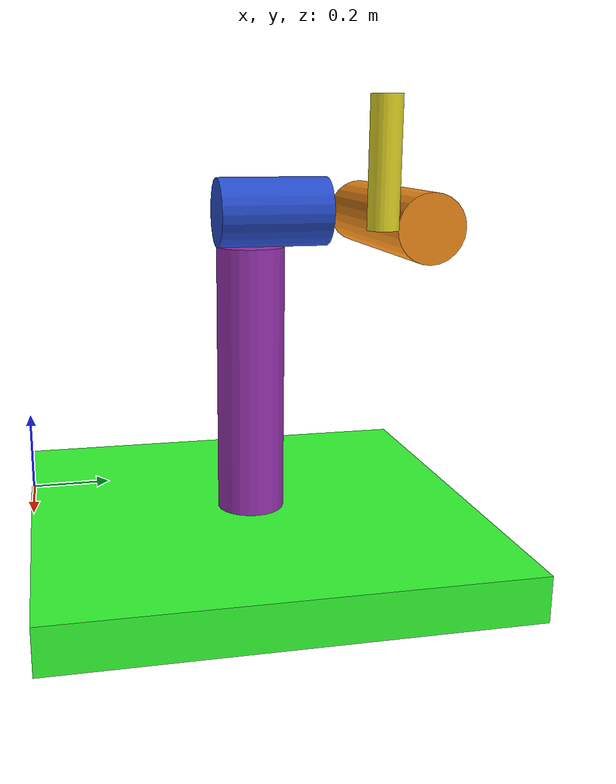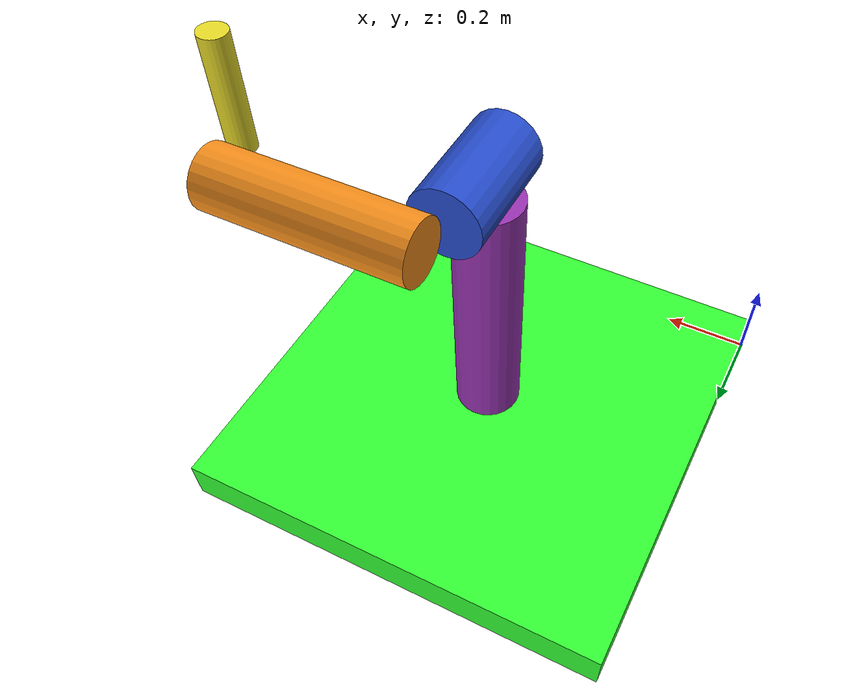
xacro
<?xml version="1.0"?>
<robot xmlns:xacro="http://www.ros.org/wiki/xacro" name="robot">

    <xacro:include filename="inertial_macros.xacro" />

    <!-- This first link called "world" is empty -->
    <link name="world"></link>

    <joint name="base_joint" type="fixed">
        <origin xyz="0.5 0.5 0" rpy="0 0 0"/>
        <parent link="world"/>
        <child link="base_link"/>
    </joint>

    <link name="base_link">
        <visual>
            <origin xyz="0 0 0.05" rpy="0 0 0"/>
            <geometry>
                <box size="1 1 0.1" />
            </geometry>
            <material name="green">
                <color rgba="0.2 1 0.2 1"/>
            </material>
        </visual>
        <collision>
            <origin xyz="0 0 0.05" rpy="0 0 0"/>
            <geometry>
                <box size="1 1 0.1" />
            </geometry>
        </collision>
        <inertial>
            <origin xyz="0 0 0.05" rpy="0 0 0"/>
            <mass value="12" />
            <inertia ixx="2.26" ixy="0.0" ixz="0.0" iyy="6.26" iyz="0.0" izz="8.5" />
        </inertial>
    </link>

    <joint name="joint_1_shoulder" type="fixed">
        <origin xyz="0 0 0.1" rpy="0 0 0"/>
        <parent link="base_link"/>
        <child link="link_1"/>
    </joint>

    <xacro:property name="link_1_length" value="0.59817" />
    <xacro:property name="link_1_radius" value="0.07493" />

    <link name="link_1">
        <visual>
            <origin xyz="0 0 ${link_1_length/2}" rpy="0 0 0"/>
            <geometry>
                <cylinder length="${link_1_length}" radius="${link_1_radius}" />
            </geometry>
            <material name="purple" />
        </visual>
        <collision>
            <origin xyz="0 0 ${link_1_length/2}" rpy="0 0 0"/>
            <geometry>
                <cylinder length="${link_1_length}" radius="${link_1_radius}" />
            </geometry>
        </collision>
        <xacro:inertial_cylinder mass="0.5" length="${link_1_length}" radius="${link_1_radius}">
            <origin xyz="0 0 ${link_1_length/2}" rpy="0 0 0"/>
        </xacro:inertial_cylinder>
    </link>

    <!-- Add properties for shoulder -->
    <xacro:property name="shoulder_length" value="${0.1686 + link_1_radius}" />
    <xacro:property name="shoulder_radius" value="${link_1_radius}" />

    <joint name="joint_1" type="revolute">
        <origin xyz="0 0 0.671" rpy="0 0 0"/>
        <parent link="link_1"/>
        <child link="shoulder"/>
        <axis xyz="0 0 1"/>
        <limit lower="${-10*pi}" upper="${10*pi}" velocity="2" effort="1000"/>
        <dynamics damping="0" friction="0"/>
    </joint>

    <!-- MATLAB Link 1 = shoulder (m1=0, only Izz=1.49) -->
    <link name="shoulder">
        <visual>
            <origin xyz="0 ${shoulder_length/2 - shoulder_radius} 0" rpy="${pi/2} 0 0"/>
            <geometry>
                <cylinder length="${shoulder_length}" radius="${shoulder_radius}" />
            </geometry>
            <material name="blue" />
        </visual>
        <collision>
            <origin xyz="0 ${shoulder_length/2 - shoulder_radius} 0" rpy="${pi/2} 0 0"/>
            <geometry>
                <cylinder length="${shoulder_length}" radius="${shoulder_radius}" />
            </geometry>
        </collision>
        <xacro:inertial_link1>
            <origin xyz="0 0 0" rpy="0 0 0"/>
        </xacro:inertial_link1>
    </link>

    <xacro:property name="link_2_length" value="0.432" />
    <xacro:property name="link_2_radius" value="0.065278" />

    <joint name="joint_2" type="revolute">
        <origin xyz="0 ${shoulder_length} 0" rpy="${-pi/2} 0 0"/>
        <parent link="shoulder"/>
        <child link="link_2"/>
        <axis xyz="0 0 1"/>
        <limit lower="${-10*pi}" upper="${10*pi}" velocity="2" effort="1000"/>
        <dynamics damping="0" friction="0"/>
    </joint>

    <!-- MATLAB Link 2 = link_2 (m2=17.4 kg) -->
    <!-- CoG2 = [0.068; 0.006; -0.016] w.r.t. link frame {2} -->
    <link name="link_2">
        <visual>
            <origin xyz="${link_2_length/2} 0 0" rpy="0 ${pi/2} 0"/>
            <geometry>
                <cylinder length="${link_2_length}" radius="${link_2_radius}" />
            </geometry>
            <material name="orange" />
        </visual>
        <collision>
            <origin xyz="${link_2_length/2} 0 0" rpy="0 ${pi/2} 0"/>
            <geometry>
                <cylinder length="${link_2_length}" radius="${link_2_radius}" />
            </geometry>
        </collision>
        <xacro:inertial_link2>
            <origin xyz="0.068 0.006 -0.016" rpy="0 0 0"/>
        </xacro:inertial_link2>
    </link>

    <xacro:property name="link_3_length" value="0.233" />
    <xacro:property name="link_3_radius" value="0.028702" />

    <joint name="joint_3" type="revolute">
        <origin xyz="${link_2_length} 0 -0.094" rpy="0 0 0"/>
        <parent link="link_2"/>
        <child link="link_3"/>
        <axis xyz="0 0 1"/>
        <limit lower="${-10*pi}" upper="${10*pi}" velocity="2" effort="1000"/>
        <dynamics damping="0" friction="0"/>
    </joint>

    <!-- MATLAB Link 3 = link_3 (m3=4.8 kg) -->
    <!-- CoG3 = [0.000; -0.143; 0.014] w.r.t. link frame {3} -->
    <link name="link_3">
        <visual>
            <origin xyz="0 -${link_3_length/2} 0" rpy="${-pi/2} 0 0"/>
            <geometry>
                <cylinder length="${link_3_length}" radius="${link_3_radius}" />
            </geometry>
            <material name="yellow" />
        </visual>
        <collision>
            <origin xyz="0 -${link_3_length/2} 0" rpy="${-pi/2} 0 0"/>
            <geometry>
                <cylinder length="${link_3_length}" radius="${link_3_radius}" />
            </geometry>
        </collision>
        <xacro:inertial_link3 mass="4.8">
            <origin xyz="0.0 -0.143 0.014" rpy="0 0 0"/>
        </xacro:inertial_link3>
    </link>

    <!-- Gazebo-specific properties for links -->
    <gazebo reference="base_link">
        <material>Gazebo/Green</material>
        <mu1>0.2</mu1>
        <mu2>0.2</mu2>
        <self_collide>true</self_collide>
    </gazebo>

    <gazebo reference="link_1">
        <material>Gazebo/Purple</material>
        <mu1>0.2</mu1>
        <mu2>0.2</mu2>
        <self_collide>true</self_collide>
    </gazebo>

    <gazebo reference="shoulder">
        <material>Gazebo/Blue</material>
        <mu1>0.2</mu1>
        <mu2>0.2</mu2>
        <self_collide>true</self_collide>
    </gazebo>

    <gazebo reference="link_2">
        <material>Gazebo/Orange</material>
        <mu1>0.2</mu1>
        <mu2>0.2</mu2>
        <self_collide>true</self_collide>
    </gazebo>

    <gazebo reference="link_3">
        <material>Gazebo/Yellow</material>
        <mu1>0.2</mu1>
        <mu2>0.2</mu2>
        <self_collide>true</self_collide>
    </gazebo>

</robot>
